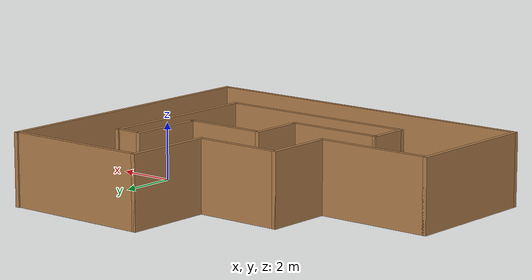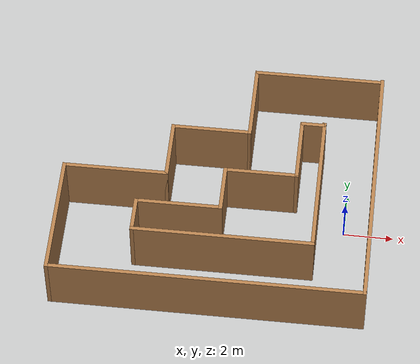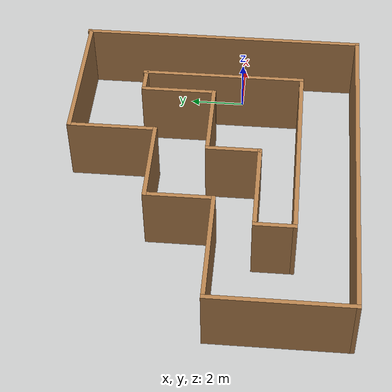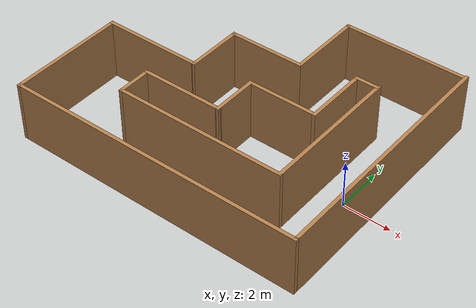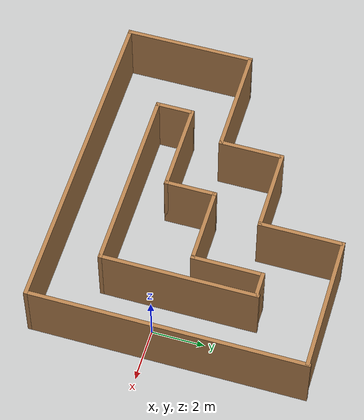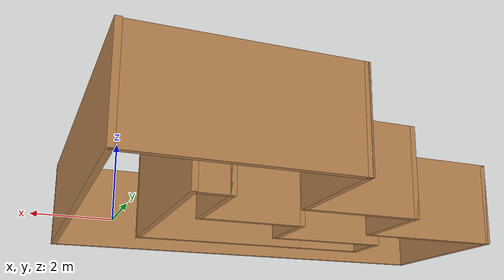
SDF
<?xml version='1.0'?>
<sdf version='1.6'>
  <model name='Circle_custom'>
    <pose frame=''>-5.12004 0.868031 0 0 -0 0</pose>
    <link name='Wall_0'>
      <collision name='Wall_0_Collision'>
        <geometry>
          <box>
            <size>6 0.15 2.5</size>
          </box>
        </geometry>
        <pose frame=''>0 0 1.25 0 -0 0</pose>
      </collision>
      <visual name='Wall_0_Visual'>
        <pose frame=''>0 0 1.25 0 -0 0</pose>
        <geometry>
          <box>
            <size>6 0.15 2.5</size>
          </box>
        </geometry>
        <material>
          <script>
            <uri>file://media/materials/scripts/gazebo.material</uri>
            <name>Gazebo/Wood</name>
          </script>
          <ambient>1 1 1 1</ambient>
        </material>
        <meta>
          <layer>0</layer>
        </meta>
      </visual>
      <pose frame=''>3.99105 -0.187218 0 0 -0 -1.5708</pose>
    </link>
    <link name='Wall_10'>
      <collision name='Wall_10_Collision'>
        <geometry>
          <box>
            <size>2.5 0.15 2.5</size>
          </box>
        </geometry>
        <pose frame=''>0 0 1.25 0 -0 0</pose>
      </collision>
      <visual name='Wall_10_Visual'>
        <pose frame=''>0 0 1.25 0 -0 0</pose>
        <geometry>
          <box>
            <size>2.5 0.15 2.5</size>
          </box>
        </geometry>
        <material>
          <script>
            <uri>file://media/materials/scripts/gazebo.material</uri>
            <name>Gazebo/Wood</name>
          </script>
          <ambient>1 1 1 1</ambient>
        </material>
        <meta>
          <layer>0</layer>
        </meta>
      </visual>
      <pose frame=''>-2.075 0.85 0 0 -0 1.5708</pose>
    </link>
    <link name='Wall_11'>
      <collision name='Wall_11_Collision'>
        <geometry>
          <box>
            <size>3.25 0.15 2.5</size>
          </box>
        </geometry>
        <pose frame=''>0 0 1.25 0 -0 0</pose>
      </collision>
      <visual name='Wall_11_Visual'>
        <pose frame=''>0 0 1.25 0 -0 0</pose>
        <geometry>
          <box>
            <size>3.25 0.15 2.5</size>
          </box>
        </geometry>
        <material>
          <script>
            <uri>file://media/materials/scripts/gazebo.material</uri>
            <name>Gazebo/Wood</name>
          </script>
          <ambient>1 1 1 1</ambient>
        </material>
        <meta>
          <layer>0</layer>
        </meta>
      </visual>
      <pose frame=''>-0.525 2.025 0 0 -0 0</pose>
    </link>
    <link name='Wall_13'>
      <collision name='Wall_13_Collision'>
        <geometry>
          <box>
            <size>3.25 0.15 2.5</size>
          </box>
        </geometry>
        <pose frame=''>0 0 1.25 0 -0 0</pose>
      </collision>
      <visual name='Wall_13_Visual'>
        <pose frame=''>0 0 1.25 0 -0 0</pose>
        <geometry>
          <box>
            <size>3.25 0.15 2.5</size>
          </box>
        </geometry>
        <material>
          <script>
            <uri>file://media/materials/scripts/gazebo.material</uri>
            <name>Gazebo/Wood</name>
          </script>
          <ambient>1 1 1 1</ambient>
        </material>
        <meta>
          <layer>0</layer>
        </meta>
      </visual>
      <pose frame=''>1.025 3.575 0 0 -0 1.5708</pose>
    </link>
    <link name='Wall_14'>
      <collision name='Wall_14_Collision'>
        <geometry>
          <box>
            <size>5.25 0.15 2.5</size>
          </box>
        </geometry>
        <pose frame=''>0 0 1.25 0 -0 0</pose>
      </collision>
      <visual name='Wall_14_Visual'>
        <pose frame=''>0 0 1.25 0 -0 0</pose>
        <geometry>
          <box>
            <size>5.25 0.15 2.5</size>
          </box>
        </geometry>
        <material>
          <script>
            <uri>file://media/materials/scripts/gazebo.material</uri>
            <name>Gazebo/Wood</name>
          </script>
          <ambient>1 1 1 1</ambient>
        </material>
        <meta>
          <layer>0</layer>
        </meta>
      </visual>
      <pose frame=''>3.575 5.125 0 0 -0 0</pose>
    </link>
    <link name='Wall_16'>
      <collision name='Wall_16_Collision'>
        <geometry>
          <box>
            <size>7.25 0.15 2.5</size>
          </box>
        </geometry>
        <pose frame=''>0 0 1.25 0 -0 0</pose>
      </collision>
      <visual name='Wall_16_Visual'>
        <pose frame=''>0 0 1.25 0 -0 0</pose>
        <geometry>
          <box>
            <size>7.25 0.15 2.5</size>
          </box>
        </geometry>
        <material>
          <script>
            <uri>file://media/materials/scripts/gazebo.material</uri>
            <name>Gazebo/Wood</name>
          </script>
          <ambient>1 1 1 1</ambient>
        </material>
        <meta>
          <layer>0</layer>
        </meta>
      </visual>
      <pose frame=''>0.441047 -3.11222 0 0 -0 3.14159</pose>
    </link>
    <link name='Wall_18'>
      <collision name='Wall_18_Collision'>
        <geometry>
          <box>
            <size>1.5 0.15 2.5</size>
          </box>
        </geometry>
        <pose frame=''>0 0 1.25 0 -0 0</pose>
      </collision>
      <visual name='Wall_18_Visual'>
        <pose frame=''>0 0 1.25 0 -0 0</pose>
        <geometry>
          <box>
            <size>1.5 0.15 2.5</size>
          </box>
        </geometry>
        <material>
          <script>
            <uri>file://media/materials/scripts/gazebo.material</uri>
            <name>Gazebo/Wood</name>
          </script>
          <ambient>1 1 1 1</ambient>
        </material>
        <meta>
          <layer>0</layer>
        </meta>
      </visual>
      <pose frame=''>-3.10895 -2.43722 0 0 -0 1.5708</pose>
    </link>
    <link name='Wall_19'>
      <collision name='Wall_19_Collision'>
        <geometry>
          <box>
            <size>3.5 0.15 2.5</size>
          </box>
        </geometry>
        <pose frame=''>0 0 1.25 0 -0 0</pose>
      </collision>
      <visual name='Wall_19_Visual'>
        <pose frame=''>0 0 1.25 0 -0 0</pose>
        <geometry>
          <box>
            <size>3.5 0.15 2.5</size>
          </box>
        </geometry>
        <material>
          <script>
            <uri>file://media/materials/scripts/gazebo.material</uri>
            <name>Gazebo/Wood</name>
          </script>
          <ambient>1 1 1 1</ambient>
        </material>
        <meta>
          <layer>0</layer>
        </meta>
      </visual>
      <pose frame=''>-1.43395 -1.76222 0 0 -0 0</pose>
    </link>
    <link name='Wall_20'>
      <collision name='Wall_20_Collision'>
        <geometry>
          <box>
            <size>2 0.15 2.5</size>
          </box>
        </geometry>
        <pose frame=''>0 0 1.25 0 -0 0</pose>
      </collision>
      <visual name='Wall_20_Visual'>
        <pose frame=''>0 0 1.25 0 -0 0</pose>
        <geometry>
          <box>
            <size>2 0.15 2.5</size>
          </box>
        </geometry>
        <material>
          <script>
            <uri>file://media/materials/scripts/gazebo.material</uri>
            <name>Gazebo/Wood</name>
          </script>
          <ambient>1 1 1 1</ambient>
        </material>
        <meta>
          <layer>0</layer>
        </meta>
      </visual>
      <pose frame=''>0.241047 -0.837218 0 0 -0 1.5708</pose>
    </link>
    <link name='Wall_21'>
      <collision name='Wall_21_Collision'>
        <geometry>
          <box>
            <size>3 0.15 2.5</size>
          </box>
        </geometry>
        <pose frame=''>0 0 1.25 0 -0 0</pose>
      </collision>
      <visual name='Wall_21_Visual'>
        <pose frame=''>0 0 1.25 0 -0 0</pose>
        <geometry>
          <box>
            <size>3 0.15 2.5</size>
          </box>
        </geometry>
        <material>
          <script>
            <uri>file://media/materials/scripts/gazebo.material</uri>
            <name>Gazebo/Wood</name>
          </script>
          <ambient>1 1 1 1</ambient>
        </material>
        <meta>
          <layer>0</layer>
        </meta>
      </visual>
      <pose frame=''>1.66605 0.087782 0 0 -0 0</pose>
    </link>
    <link name='Wall_23'>
      <collision name='Wall_23_Collision'>
        <geometry>
          <box>
            <size>2.75 0.15 2.5</size>
          </box>
        </geometry>
        <pose frame=''>0 0 1.25 0 -0 0</pose>
      </collision>
      <visual name='Wall_23_Visual'>
        <pose frame=''>0 0 1.25 0 -0 0</pose>
        <geometry>
          <box>
            <size>2.75 0.15 2.5</size>
          </box>
        </geometry>
        <material>
          <script>
            <uri>file://media/materials/scripts/gazebo.material</uri>
            <name>Gazebo/Wood</name>
          </script>
          <ambient>1 1 1 1</ambient>
        </material>
        <meta>
          <layer>0</layer>
        </meta>
      </visual>
      <pose frame=''>3.09105 1.38778 0 0 -0 1.5708</pose>
    </link>
    <link name='Wall_24'>
      <collision name='Wall_24_Collision'>
        <geometry>
          <box>
            <size>1 0.15 2.5</size>
          </box>
        </geometry>
        <pose frame=''>0 0 1.25 0 -0 0</pose>
      </collision>
      <visual name='Wall_24_Visual'>
        <pose frame=''>0 0 1.25 0 -0 0</pose>
        <geometry>
          <box>
            <size>1 0.15 2.5</size>
          </box>
        </geometry>
        <material>
          <script>
            <uri>file://media/materials/scripts/gazebo.material</uri>
            <name>Gazebo/Wood</name>
          </script>
          <ambient>1 1 1 1</ambient>
        </material>
        <meta>
          <layer>0</layer>
        </meta>
      </visual>
      <pose frame=''>3.51605 2.68778 0 0 -0 0</pose>
    </link>
    <link name='Wall_4'>
      <collision name='Wall_4_Collision'>
        <geometry>
          <box>
            <size>10.5 0.15 2.5</size>
          </box>
        </geometry>
        <pose frame=''>0 0 1.25 0 -0 0</pose>
      </collision>
      <visual name='Wall_4_Visual'>
        <pose frame=''>0 0 1.25 0 -0 0</pose>
        <geometry>
          <box>
            <size>10.5 0.15 2.5</size>
          </box>
        </geometry>
        <material>
          <script>
            <uri>file://media/materials/scripts/gazebo.material</uri>
            <name>Gazebo/Wood</name>
          </script>
          <ambient>1 1 1 1</ambient>
        </material>
        <meta>
          <layer>0</layer>
        </meta>
      </visual>
      <pose frame=''>6.175 -0 0 0 -0 -1.5708</pose>
    </link>
    <link name='Wall_6'>
      <collision name='Wall_6_Collision'>
        <geometry>
          <box>
            <size>12.5 0.15 2.5</size>
          </box>
        </geometry>
        <pose frame=''>0 0 1.25 0 -0 0</pose>
      </collision>
      <visual name='Wall_6_Visual'>
        <pose frame=''>0 0 1.25 0 -0 0</pose>
        <geometry>
          <box>
            <size>12.5 0.15 2.5</size>
          </box>
        </geometry>
        <material>
          <script>
            <uri>file://media/materials/scripts/gazebo.material</uri>
            <name>Gazebo/Wood</name>
          </script>
          <ambient>1 1 1 1</ambient>
        </material>
        <meta>
          <layer>0</layer>
        </meta>
      </visual>
      <pose frame=''>-0 -5.175 0 0 -0 3.14159</pose>
    </link>
    <link name='Wall_7'>
      <collision name='Wall_7_Collision'>
        <geometry>
          <box>
            <size>5 0.15 2.5</size>
          </box>
        </geometry>
        <pose frame=''>0 0 1.25 0 -0 0</pose>
      </collision>
      <visual name='Wall_7_Visual'>
        <pose frame=''>0 0 1.25 0 -0 0</pose>
        <geometry>
          <box>
            <size>5 0.15 2.5</size>
          </box>
        </geometry>
        <material>
          <script>
            <uri>file://media/materials/scripts/gazebo.material</uri>
            <name>Gazebo/Wood</name>
          </script>
          <ambient>1 1 1 1</ambient>
        </material>
        <meta>
          <layer>0</layer>
        </meta>
      </visual>
      <pose frame=''>-6.175 -2.75 0 0 -0 1.5708</pose>
    </link>
    <link name='Wall_8'>
      <collision name='Wall_8_Collision'>
        <geometry>
          <box>
            <size>4.25 0.15 2.5</size>
          </box>
        </geometry>
        <pose frame=''>0 0 1.25 0 -0 0</pose>
      </collision>
      <visual name='Wall_8_Visual'>
        <pose frame=''>0 0 1.25 0 -0 0</pose>
        <geometry>
          <box>
            <size>4.25 0.15 2.5</size>
          </box>
        </geometry>
        <material>
          <script>
            <uri>file://media/materials/scripts/gazebo.material</uri>
            <name>Gazebo/Wood</name>
          </script>
          <ambient>1 1 1 1</ambient>
        </material>
        <meta>
          <layer>0</layer>
        </meta>
      </visual>
      <pose frame=''>-4.125 -0.325 0 0 -0 0</pose>
    </link>
    <static>1</static>
  </model>
</sdf>
